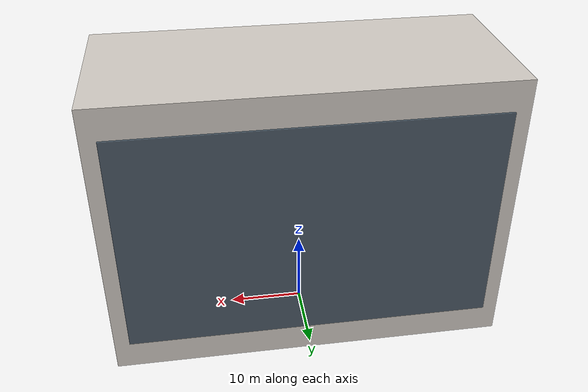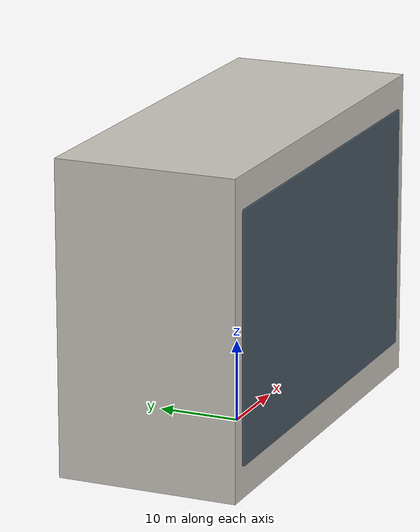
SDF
<?xml version="1.0" ?>
<sdf version="1.8">
  <model name="gxe_north_commercial_block">
    <static>true</static>
    <link name="block_link">
      <collision name="col"><pose>0 0 19.0 0 0 0</pose><geometry><box><size>52.0 22.0 38.0</size></box></geometry></collision>
      <visual name="main_vis"><pose>0 0 19.0 0 0 0</pose><geometry><box><size>52.0 22.0 38.0</size></box></geometry><material><ambient>0.73 0.72 0.70 1</ambient><diffuse>0.80 0.78 0.75 1</diffuse></material></visual>
      <visual name="balconies"><pose>0 0 19.0 0 0 0</pose><geometry><box><size>48.0 22.6 30.0</size></box></geometry><material><ambient>0.22 0.26 0.32 0.88</ambient><diffuse>0.28 0.34 0.40 0.88</diffuse></material></visual>
    </link>
  </model>
</sdf>
